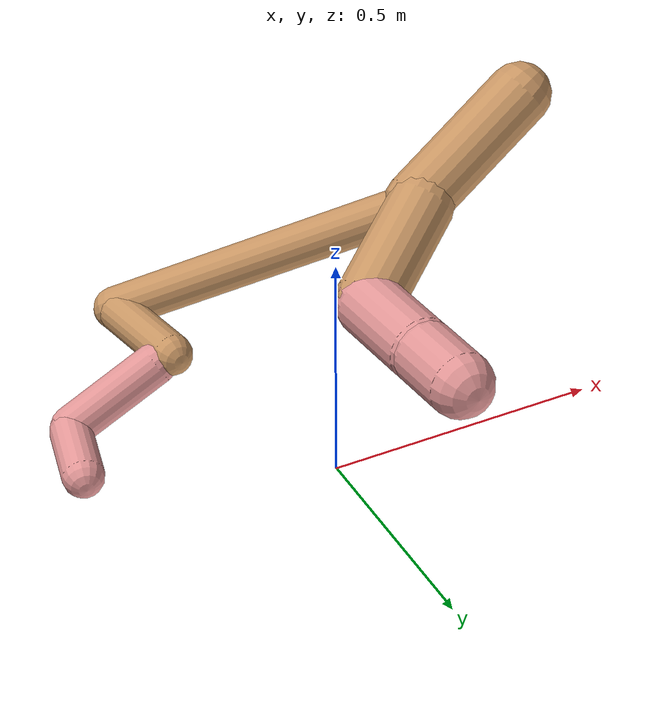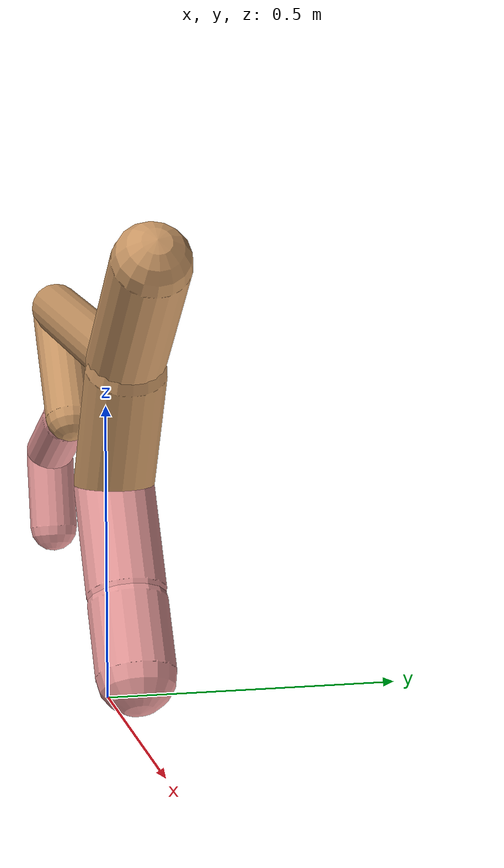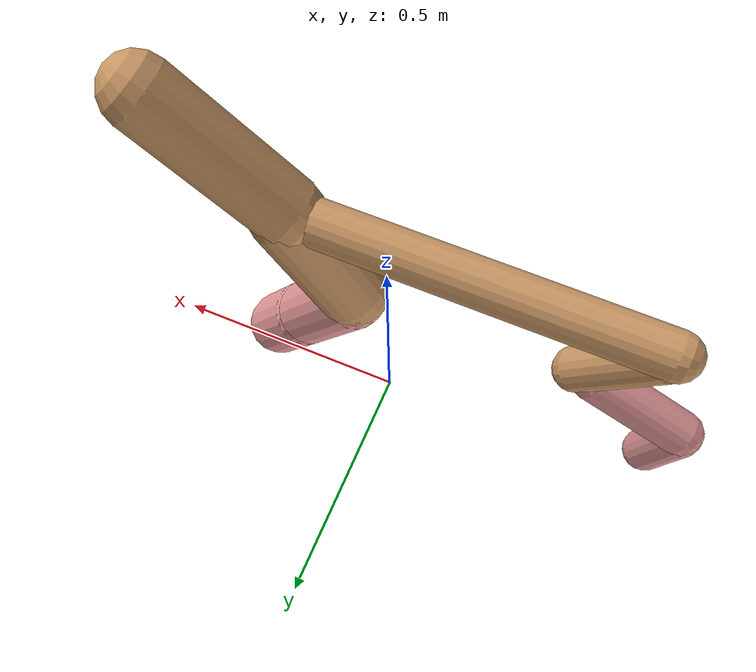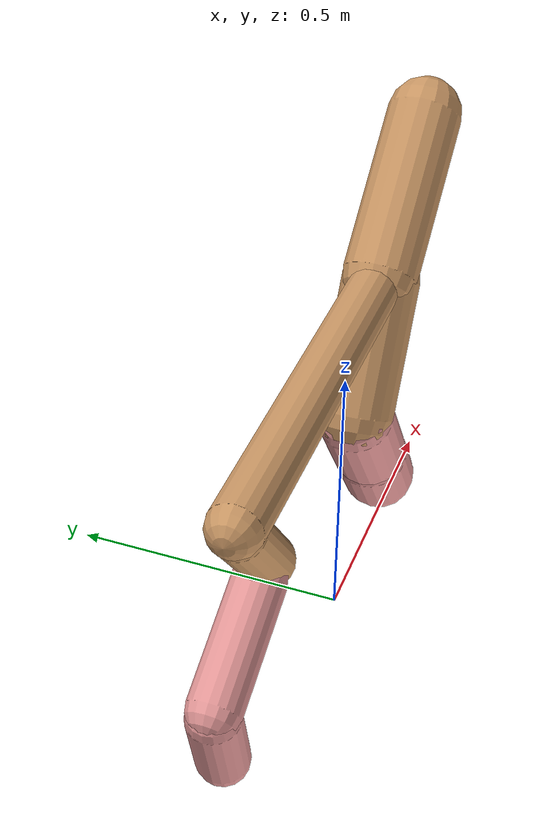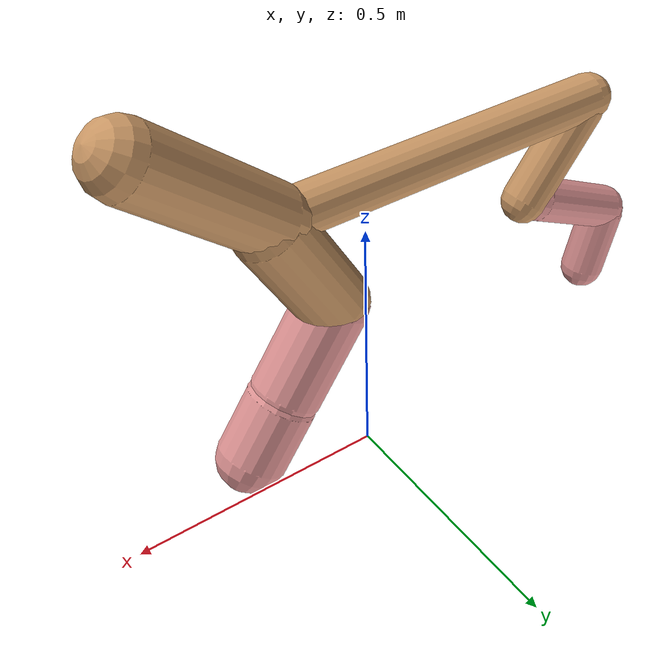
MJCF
<mujoco model="cheetah">
  <compiler angle="radian" coordinate="local" inertiafromgeom="true" settotalmass="14" />
  <default>
    <joint armature=".1" damping=".01" limited="true" solimplimit="0 .8 .03" solreflimit=".02 1" stiffness="8" />
    <geom conaffinity="0" condim="3" contype="1" friction="0.8 .1 .1" rgba="0.8 0.6 .4 1" solimp="0.0 0.8 0.01" solref="0.02 1" />
    <motor ctrllimited="true" ctrlrange="-1 1" />
  </default>
  <size nstack="300000" nuser_geom="1" />
  <option gravity="0 0 -9.81" timestep="0.01" />
  <worldbody>
    <body name="torso" pos="0.0 0.0 0.5945052390361384">
      <joint armature="0" axis="1 0 0" damping="0" limited="false" name="ignorex" pos="0 0 0" stiffness="0" type="slide" />
      <joint armature="0" axis="0 0 1" damping="0" limited="false" name="ignorez" pos="0 0 0" stiffness="0" type="slide" />
      <joint armature="0" axis="0 1 0" damping="0" limited="false" name="ignorey" pos="0 0 0" stiffness="0" type="hinge" />
      <geom fromto="-0.5 0.0 0.0 0.19202036972909248 0.0 0.0" name="torso" size="0.044114254696612454" type="capsule" />
      <geom axisangle="0 1 0 .87" name="head" pos="0.2920203697290925 0.0 0.1" size="0.06453246399793154 0.15" type="capsule" />

      <body name="bthigh" pos="-.5 0 0">
        <joint axis="0 1 0" damping="6" name="bthigh" pos="0 0 0" range="-.52 1.05" stiffness="240" type="hinge" />
        <geom axisangle="0 1 0 -3.8" name="bthigh" pos="0.0734775819030384 0.0 -0.0955208564739499" size="0.0429992832200296 0.10149999999999999" type="capsule" />
        <body name="bshin" pos="0.10695516380607678 0.0 -0.18104171294789978">
          <joint axis="0 1 0" damping="4.5" name="bshin" pos="0 0 0" range="-.785 .785" stiffness="180" type="hinge" />
          <geom axisangle="0 1 0 -2.03" name="bshin" pos="-0.0997507764050038 0.0 -0.0498753882025019" rgba="0.9 0.6 0.6 1" size="0.0429992832200296 0.105" type="capsule" />
          <body name="bfoot" pos="-0.1995015528100076 0.0 -0.0997507764050038">
            <joint axis="0 1 0" damping="3" name="bfoot" pos="0 0 0" range="-.4 .785" stiffness="120" type="hinge" />
            <geom axisangle="0 1 0 -.27" name="bfoot" pos="0.021667753813597694 0.0 -0.07005907066396588" rgba="0.9 0.6 0.6 1" size="0.0429992832200296 0.0658" type="capsule" />
            <inertial mass="10" />
          </body>
        </body>
      </body>
      <body name="fthigh" pos="0.19202036972909253 0.0 0.0">
        <joint axis="0 1 0" damping="4.5" name="fthigh" pos="0 0 0" range="-1.5 0.8" stiffness="180" type="hinge" />
        <geom axisangle="0 1 0 .52" name="fthigh" pos="-0.06260490041690467 0.0 -0.10732268642897942" size="0.0668859475954881 0.11832342760649207" type="capsule" />
        <body name="fshin" pos="-0.12520980083380934 0.0 -0.21464537285795884">
          <joint axis="0 1 0" damping="3" name="fshin" pos="0 0 0" range="-1.2 1.1" stiffness="120" type="hinge" />
          <geom axisangle="0 1 0 -.6" name="fshin" pos="0.05815144799310941 0.0 -0.08051738952892072" rgba="0.9 0.6 0.6 1" size="0.0668859475954881 0.09430288215254255" type="capsule" />
          <body name="ffoot" pos="0.11630289598621882 0.0 -0.16103477905784144">
            <joint axis="0 1 0" damping="1.5" name="ffoot" pos="0 0 0" range="-3.1 -0.3" stiffness="60" type="hinge" />
            <geom axisangle="0 1 0 -.6" name="ffoot" pos="0.04082291161249919 0.0 -0.06350230695277652" rgba="0.9 0.6 0.6 1" size="0.0668859475954881 0.0622754882139432" type="capsule" />
            <inertial mass="10" />
          </body>
        </body>
      </body>
    </body>
  </worldbody>
  <actuator>
    <motor gear="120" joint="bthigh" name="bthigh" />
    <motor gear="90" joint="bshin" name="bshin" />
    <motor gear="60" joint="bfoot" name="bfoot" />
    <motor gear="120" joint="fthigh" name="fthigh" />
    <motor gear="60" joint="fshin" name="fshin" />
    <motor gear="30" joint="ffoot" name="ffoot" />
  </actuator>
</mujoco>
